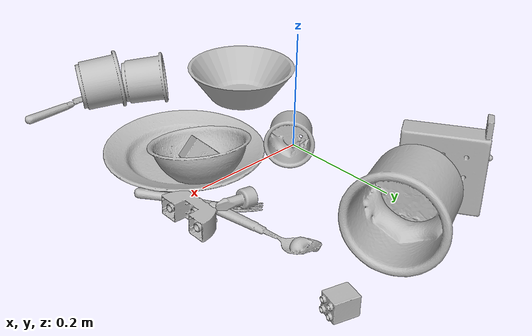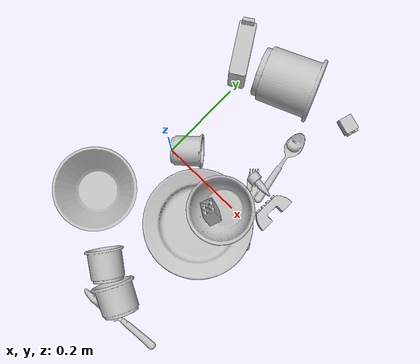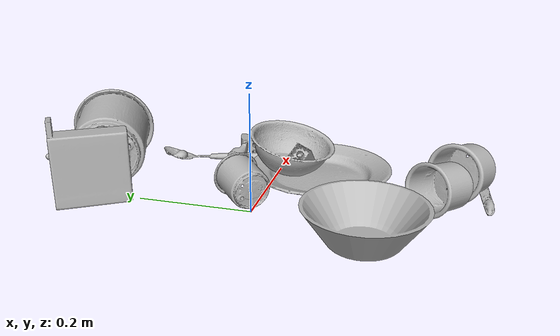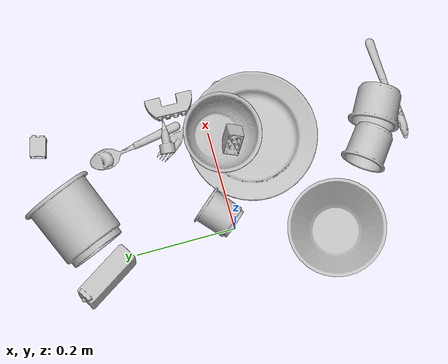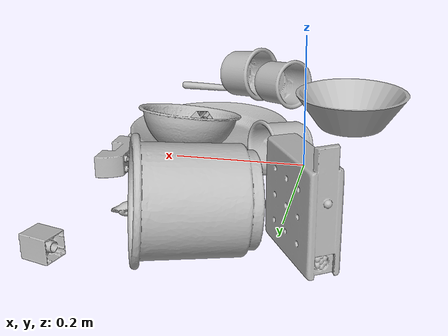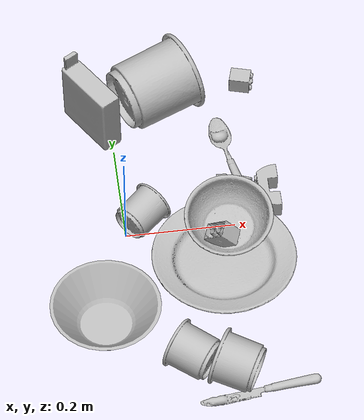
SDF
<sdf version="1.4">
  <world name="default">
    <light name="light1" type="point">
      <pose>0 0 1 0 0 0</pose>
      <diffuse>3 3 3 1</diffuse>
      <specular>3 3 3 1</specular>
    </light>
    <light name="light2" type="point">
      <pose>0 0.5 2 0 0 0</pose>
      <diffuse>1 1 1 1</diffuse>
      <specular>1 1 1 1</specular>
    </light>
    <light name="light3" type="point">
      <pose>0 0.5 2 0 0 0</pose>
      <diffuse>3 3 3 1</diffuse>
      <specular>3 3 3 1</specular>
    </light>
    <scene>
      <ambient>0.7 0.7 0.7</ambient>
    </scene>
    <model name="plate1">
      <link name="link_plate1">
        <collision name="default">
          <geometry>
            <mesh>
              <uri>model://plate/collision_meshes/collision.obj</uri>
              <scale>1.0 1.0 1.0</scale>
            </mesh>
          </geometry>
          <surface>
            <friction>
              <ode>
                <mu>0.5</mu>
                <mu2>0.5</mu2>
              </ode>
            </friction>
          <contact>
        <ode>
            <max_vel>0</max_vel>
            <min_depth>0.0001</min_depth>
            <kp>1e8</kp>
        </ode>
    </contact></surface>
        </collision>
        <visual name="default">
          <geometry>
            <mesh>
              <uri>model://plate/visual_meshes/visual.dae</uri>
              <scale>1.0 1.0 1.0</scale>
            </mesh>
          </geometry>
        </visual>
        <inertial>
          <mass>0.17760059237480164</mass>
          <pose>-0.0006044625188224018 0.0002782586379908025 -0.0010561981471255422 0.0022187804018266454 -0.0032254852757079067 0.45261158451631034</pose>
          <inertia>
            <ixx>0.0008308187</ixx>
            <iyy>0.0008228725</iyy>
            <izz>0.0016249575</izz>
            <ixy>0</ixy>
            <ixz>0</ixz>
            <iyz>0</iyz>
          </inertia>
        </inertial>
      </link>
      <pose>0.1684018075466156 -0.08317098021507263 0.013733083382248878 -3.1025611528104693e-06 -1.037121333175457e-07 1.4698887626245563</pose>
    </model>
    <model name="cup1">
      <link name="link_cup1">
        <collision name="default">
          <geometry>
            <mesh>
              <uri>model://e_cups/collision_meshes/collision.obj</uri>
              <scale>2.0 2.0 2.0</scale>
            </mesh>
          </geometry>
          <surface>
            <friction>
              <ode>
                <mu>0.5</mu>
                <mu2>0.5</mu2>
              </ode>
            </friction>
          <contact>
        <ode>
            <max_vel>0</max_vel>
            <min_depth>0.0001</min_depth>
            <kp>1e8</kp>
        </ode>
    </contact></surface>
        </collision>
        <visual name="default">
          <geometry>
            <mesh>
              <uri>model://e_cups/visual_meshes/visual.dae</uri>
              <scale>2.0 2.0 2.0</scale>
            </mesh>
          </geometry>
        </visual>
        <inertial>
          <mass>0.744063675403595</mass>
          <pose>0.002271148143336177 0.005759569350630045 -0.007765938527882099 0.6952380949131286 0.08767384491187986 -0.5235246841726229</pose>
          <inertia>
            <ixx>0.0026243117</ixx>
            <iyy>0.0027427815</iyy>
            <izz>0.0025091455</izz>
            <ixy>0</ixy>
            <ixz>0</ixz>
            <iyz>0</iyz>
          </inertia>
        </inertial>
      </link>
      <pose>0.08738822489976883 0.29733240604400635 0.0697530210018158 -1.479958689725571 0.4382301521792179 -1.1372974602748247</pose>
    </model>
    <model name="silverware1">
      <link name="link_silverware1">
        <collision name="default">
          <geometry>
            <mesh>
              <uri>model://knife/collision_meshes/collision.obj</uri>
              <scale>1.0 1.0 1.0</scale>
            </mesh>
          </geometry>
          <surface>
            <friction>
              <ode>
                <mu>0.5</mu>
                <mu2>0.5</mu2>
              </ode>
            </friction>
          <contact>
        <ode>
            <max_vel>0</max_vel>
            <min_depth>0.0001</min_depth>
            <kp>1e8</kp>
        </ode>
    </contact></surface>
        </collision>
        <visual name="default">
          <geometry>
            <mesh>
              <uri>model://knife/visual_meshes/visual.dae</uri>
              <scale>1.0 1.0 1.0</scale>
            </mesh>
          </geometry>
        </visual>
        <inertial>
          <mass>0.01882243901491165</mass>
          <pose>-0.02378525212407112 0.001527512213215232 5.062019408796914e-05 0.07305335090357784 0.017248422780830937 -0.007409828138098005</pose>
          <inertia>
            <ixx>5.342572e-07</ixx>
            <iyy>7.231275e-05</iyy>
            <izz>7.248483e-05</izz>
            <ixy>0</ixy>
            <ixz>0</ixz>
            <iyz>0</iyz>
          </inertia>
        </inertial>
      </link>
      <pose>0.19242238998413086 -0.37193334102630615 0.006023768335580826 3.1116169456910114 0.04287177705310596 -3.03653584482552</pose>
    </model>
    <model name="silverware2">
      <link name="link_silverware2">
        <collision name="default">
          <geometry>
            <mesh>
              <uri>model://fork/collision_meshes/collision.obj</uri>
              <scale>1.0 1.0 1.0</scale>
            </mesh>
          </geometry>
          <surface>
            <friction>
              <ode>
                <mu>0.5</mu>
                <mu2>0.5</mu2>
              </ode>
            </friction>
          <contact>
        <ode>
            <max_vel>0</max_vel>
            <min_depth>0.0001</min_depth>
            <kp>1e8</kp>
        </ode>
    </contact></surface>
        </collision>
        <visual name="default">
          <geometry>
            <mesh>
              <uri>model://fork/visual_meshes/visual.dae</uri>
              <scale>1.0 1.0 1.0</scale>
            </mesh>
          </geometry>
        </visual>
        <inertial>
          <mass>0.02216319739818573</mass>
          <pose>-0.029570037499070168 0.0004658822435885668 0.0003218860365450382 -0.01355085274048469 -0.010977831838055618 0.014453900749429992</pose>
          <inertia>
            <ixx>7.769453e-07</ixx>
            <iyy>5.7861733e-05</iyy>
            <izz>5.8209254e-05</izz>
            <ixy>0</ixy>
            <ixz>0</ixz>
            <iyz>0</iyz>
          </inertia>
        </inertial>
      </link>
      <pose>0.23312553763389587 0.028105761855840683 0.005225695203989744 -0.01721511264258331 0.05008522788497596 2.225659054523816</pose>
    </model>
    <model name="silverware3">
      <link name="link_silverware3">
        <collision name="default">
          <geometry>
            <mesh>
              <uri>model://spoon/collision_meshes/collision.obj</uri>
              <scale>1.0 1.0 1.0</scale>
            </mesh>
          </geometry>
          <surface>
            <friction>
              <ode>
                <mu>0.5</mu>
                <mu2>0.5</mu2>
              </ode>
            </friction>
          <contact>
        <ode>
            <max_vel>0</max_vel>
            <min_depth>0.0001</min_depth>
            <kp>1e8</kp>
        </ode>
    </contact></surface>
        </collision>
        <visual name="default">
          <geometry>
            <mesh>
              <uri>model://spoon/visual_meshes/visual.dae</uri>
              <scale>1.0 1.0 1.0</scale>
            </mesh>
          </geometry>
        </visual>
        <inertial>
          <mass>0.0369713120162487</mass>
          <pose>-0.005526314955204725 -0.001603417214937508 -0.0007271651993505657 0.03521850370393077 -0.03906584809093457 0.006150612862082015</pose>
          <inertia>
            <ixx>2.0564048e-06</ixx>
            <iyy>0.00014067463</iyy>
            <izz>0.00014168874</izz>
            <ixy>0</ixy>
            <ixz>0</ixz>
            <iyz>0</iyz>
          </inertia>
        </inertial>
      </link>
      <pose>0.21153050661087036 0.14753752946853638 0.008385272696614265 0.006745840875465331 0.02689311846711688 1.745917068575438</pose>
    </model>
    <model name="cup3">
      <link name="link_cup3">
        <collision name="default">
          <geometry>
            <mesh>
              <uri>model://h_cups/collision_meshes/collision.obj</uri>
              <scale>1.0 1.0 1.0</scale>
            </mesh>
          </geometry>
          <surface>
            <friction>
              <ode>
                <mu>0.5</mu>
                <mu2>0.5</mu2>
              </ode>
            </friction>
          <contact>
        <ode>
            <max_vel>0</max_vel>
            <min_depth>0.0001</min_depth>
            <kp>1e8</kp>
        </ode>
    </contact></surface>
        </collision>
        <visual name="default">
          <geometry>
            <mesh>
              <uri>model://h_cups/visual_meshes/visual.dae</uri>
              <scale>1.0 1.0 1.0</scale>
            </mesh>
          </geometry>
        </visual>
        <inertial>
          <mass>0.07650958746671677</mass>
          <pose>-2.7029362172470428e-05 0.0002301867789356038 -0.0018405390437692404 -0.02436239906192228 0.06545228304852578 0.1288505673262376</pose>
          <inertia>
            <ixx>9.880857e-05</ixx>
            <iyy>9.7629454e-05</iyy>
            <izz>0.0001036231</izz>
            <ixy>0</ixy>
            <ixz>0</ixz>
            <iyz>0</iyz>
          </inertia>
        </inertial>
      </link>
      <pose>0.08439096808433533 -0.2991544008255005 0.04218224063515663 1.0193209505323064 -1.3688428641423411 -1.6778101380759927</pose>
    </model>
    <model name="cup4">
      <link name="link_cup4">
        <collision name="default">
          <geometry>
            <mesh>
              <uri>model://f_cups/collision_meshes/collision.obj</uri>
              <scale>1.0 1.0 1.0</scale>
            </mesh>
          </geometry>
          <surface>
            <friction>
              <ode>
                <mu>0.5</mu>
                <mu2>0.5</mu2>
              </ode>
            </friction>
          <contact>
        <ode>
            <max_vel>0</max_vel>
            <min_depth>0.0001</min_depth>
            <kp>1e8</kp>
        </ode>
    </contact></surface>
        </collision>
        <visual name="default">
          <geometry>
            <mesh>
              <uri>model://f_cups/visual_meshes/visual.dae</uri>
              <scale>1.0 1.0 1.0</scale>
            </mesh>
          </geometry>
        </visual>
        <inertial>
          <mass>0.06643713265657425</mass>
          <pose>-0.003171468386426568 -0.0006240070797502995 -0.003655537962913513 0.7862285241405351 -0.26079358215919657 -0.18237309734404591</pose>
          <inertia>
            <ixx>6.2452695e-05</ixx>
            <iyy>6.551358e-05</iyy>
            <izz>6.820148e-05</izz>
            <ixy>0</ixy>
            <ixz>0</ixz>
            <iyz>0</iyz>
          </inertia>
        </inertial>
      </link>
      <pose>0.031243901699781418 0.021690398454666138 0.03734475374221802 1.4059915072289673 -0.9313867194936116 2.4221317238168365</pose>
    </model>
    <model name="cup5">
      <link name="link_cup5">
        <collision name="default">
          <geometry>
            <mesh>
              <uri>model://j_cups/collision_meshes/collision.obj</uri>
              <scale>1.0 1.0 1.0</scale>
            </mesh>
          </geometry>
          <surface>
            <friction>
              <ode>
                <mu>0.5</mu>
                <mu2>0.5</mu2>
              </ode>
            </friction>
          <contact>
        <ode>
            <max_vel>0</max_vel>
            <min_depth>0.0001</min_depth>
            <kp>1e8</kp>
        </ode>
    </contact></surface>
        </collision>
        <visual name="default">
          <geometry>
            <mesh>
              <uri>model://j_cups/visual_meshes/visual.dae</uri>
              <scale>1.0 1.0 1.0</scale>
            </mesh>
          </geometry>
        </visual>
        <inertial>
          <mass>0.12178023159503937</mass>
          <pose>0.0006164865335449576 0.000539897009730339 -0.001347901183180511 0.03030406613159603 0.03757978252187804 0.4386981755119238</pose>
          <inertia>
            <ixx>0.0001788119</ixx>
            <iyy>0.00018067128</iyy>
            <izz>0.00020613305</izz>
            <ixy>0</ixy>
            <ixz>0</ixz>
            <iyz>0</iyz>
          </inertia>
        </inertial>
      </link>
      <pose>0.15649187564849854 -0.3353590965270996 0.04713508486747742 1.1446320313070861 1.2796737707410124 -2.4725616941728283</pose>
    </model>
    <model name="bowl1">
      <link name="link_bowl1">
        <collision name="default">
          <geometry>
            <mesh>
              <uri>model://bowl/collision_meshes/collision.obj</uri>
              <scale>1.0 1.0 1.0</scale>
            </mesh>
          </geometry>
          <surface>
            <friction>
              <ode>
                <mu>0.5</mu>
                <mu2>0.5</mu2>
              </ode>
            </friction>
          <contact>
        <ode>
            <max_vel>0</max_vel>
            <min_depth>0.0001</min_depth>
            <kp>1e8</kp>
        </ode>
    </contact></surface>
        </collision>
        <visual name="default">
          <geometry>
            <mesh>
              <uri>model://bowl/visual_meshes/visual.dae</uri>
              <scale>1.0 1.0 1.0</scale>
            </mesh>
          </geometry>
        </visual>
        <inertial>
          <mass>0.07745425403118134</mass>
          <pose>0.0002044533030129969 -0.001030205748975277 -0.0008042643312364817 -0.015764104528614948 0.014546761750555465 0.7140386532433999</pose>
          <inertia>
            <ixx>0.00017791858</ixx>
            <iyy>0.0001739432</iyy>
            <izz>0.00029932024</izz>
            <ixy>0</ixy>
            <ixz>0</ixz>
            <iyz>0</iyz>
          </inertia>
        </inertial>
      </link>
      <pose>0.18597181141376495 -0.02063189633190632 0.04112526401877403 -0.046269170307244555 -0.2257405767256315 1.5023780109155915</pose>
    </model>
    <model name="bowl2">
      <link name="link_bowl2">
        <collision name="default">
          <geometry>
            <mesh>
              <uri>model://bowl_a/collision_meshes/collision.obj</uri>
              <scale>1.0 1.0 1.0</scale>
            </mesh>
          </geometry>
          <surface>
            <friction>
              <ode>
                <mu>0.5</mu>
                <mu2>0.5</mu2>
              </ode>
            </friction>
          <contact>
        <ode>
            <max_vel>0</max_vel>
            <min_depth>0.0001</min_depth>
            <kp>1e8</kp>
        </ode>
    </contact></surface>
        </collision>
        <visual name="default">
          <geometry>
            <mesh>
              <uri>model://bowl_a/visual_meshes/visual.dae</uri>
              <scale>1.0 1.0 1.0</scale>
            </mesh>
          </geometry>
        </visual>
        <inertial>
          <mass>0.3088552951812744</mass>
          <pose>0.00027867488097399473 4.730938235297799e-05 -0.0013765291078016162 -0.0009805400563029818 -0.0010938222386440513 -0.19123616665791646</pose>
          <inertia>
            <ixx>0.0008793254</ixx>
            <iyy>0.00088472397</iyy>
            <izz>0.0015639137</izz>
            <ixy>0</ixy>
            <ixz>0</ixz>
            <iyz>0</iyz>
          </inertia>
        </inertial>
      </link>
      <pose>-0.05702519789338112 -0.19271500408649445 0.030382705852389336 -7.748677047284916e-06 1.4739519802017903e-05 0.7452117819842434</pose>
    </model>
    <model name="toy1">
      <link name="link_toy1">
        <collision name="default">
          <geometry>
            <mesh>
              <uri>model://nine_hole_peg_test/collision_meshes/collision.obj</uri>
              <scale>1.0 1.0 1.0</scale>
            </mesh>
          </geometry>
          <surface>
            <friction>
              <ode>
                <mu>0.5</mu>
                <mu2>0.5</mu2>
              </ode>
            </friction>
          <contact>
        <ode>
            <max_vel>0</max_vel>
            <min_depth>0.0001</min_depth>
            <kp>1e8</kp>
        </ode>
    </contact></surface>
        </collision>
        <visual name="default">
          <geometry>
            <mesh>
              <uri>model://nine_hole_peg_test/visual_meshes/visual.dae</uri>
              <scale>1.0 1.0 1.0</scale>
            </mesh>
          </geometry>
        </visual>
        <inertial>
          <mass>0.6997236609458923</mass>
          <pose>-0.004617386497557163 -0.009647613391280174 2.6460686058271676e-05 -0.0014666798725883532 0.0007194177661592421 -0.634241755630697</pose>
          <inertia>
            <ixx>0.001094133</ixx>
            <iyy>0.0010215805</iyy>
            <izz>0.0019172435</izz>
            <ixy>0</ixy>
            <ixz>0</ixz>
            <iyz>0</iyz>
          </inertia>
        </inertial>
      </link>
      <pose>-0.03551517426967621 0.27253323793411255 0.07401732355356216 1.5585102858418258 -0.007628552422413548 2.132946844200842</pose>
    </model>
    <model name="toy2">
      <link name="link_toy2">
        <collision name="default">
          <geometry>
            <mesh>
              <uri>model://b_lego_duplo/collision_meshes/collision.obj</uri>
              <scale>1.0 1.0 1.0</scale>
            </mesh>
          </geometry>
          <surface>
            <friction>
              <ode>
                <mu>0.5</mu>
                <mu2>0.5</mu2>
              </ode>
            </friction>
          <contact>
        <ode>
            <max_vel>0</max_vel>
            <min_depth>0.0001</min_depth>
            <kp>1e8</kp>
        </ode>
    </contact></surface>
        </collision>
        <visual name="default">
          <geometry>
            <mesh>
              <uri>model://b_lego_duplo/visual_meshes/visual.dae</uri>
              <scale>1.0 1.0 1.0</scale>
            </mesh>
          </geometry>
        </visual>
        <inertial>
          <mass>0.036269694566726685</mass>
          <pose>-0.00011053054186049849 -9.152130587608553e-06 0.0019294297089800239 -0.03749458994465856 -0.026354447033388347 0.4518895757464325</pose>
          <inertia>
            <ixx>7.4228647e-06</ixx>
            <iyy>7.4727645e-06</iyy>
            <izz>6.6135317e-06</izz>
            <ixy>0</ixy>
            <ixz>0</ixz>
            <iyz>0</iyz>
          </inertia>
        </inertial>
      </link>
      <pose>0.2605798840522766 0.334288090467453 0.016152314841747284 -3.1210363145621707 1.5624527589299686 2.8794199412808754</pose>
    </model>
    <model name="toy3">
      <link name="link_toy3">
        <collision name="default">
          <geometry>
            <mesh>
              <uri>model://e_lego_duplo/collision_meshes/collision.obj</uri>
              <scale>1.0 1.0 1.0</scale>
            </mesh>
          </geometry>
          <surface>
            <friction>
              <ode>
                <mu>0.5</mu>
                <mu2>0.5</mu2>
              </ode>
            </friction>
          <contact>
        <ode>
            <max_vel>0</max_vel>
            <min_depth>0.0001</min_depth>
            <kp>1e8</kp>
        </ode>
    </contact></surface>
        </collision>
        <visual name="default">
          <geometry>
            <mesh>
              <uri>model://e_lego_duplo/visual_meshes/visual.dae</uri>
              <scale>1.0 1.0 1.0</scale>
            </mesh>
          </geometry>
        </visual>
        <inertial>
          <mass>0.09994293004274368</mass>
          <pose>0.0003256055060774088 0.00023485402925871313 0.0019521453650668263 -0.0225675226805428 -6.825163911406593e-05 -0.00762515763197677</pose>
          <inertia>
            <ixx>2.08414e-05</ixx>
            <iyy>8.553845e-05</iyy>
            <izz>8.329725e-05</izz>
            <ixy>0</ixy>
            <ixz>0</ixz>
            <iyz>0</iyz>
          </inertia>
        </inertial>
      </link>
      <pose>0.2688350975513458 0.06006436422467232 0.016279311850667 1.578651894360079 -0.004766727521591999 -1.596938179152591</pose>
    </model>
    <model name="toy4">
      <link name="link_toy4">
        <collision name="default">
          <geometry>
            <mesh>
              <uri>model://d_lego_duplo/collision_meshes/collision.obj</uri>
              <scale>1.0 1.0 1.0</scale>
            </mesh>
          </geometry>
          <surface>
            <friction>
              <ode>
                <mu>0.5</mu>
                <mu2>0.5</mu2>
              </ode>
            </friction>
          <contact>
        <ode>
            <max_vel>0</max_vel>
            <min_depth>0.0001</min_depth>
            <kp>1e8</kp>
        </ode>
    </contact></surface>
        </collision>
        <visual name="default">
          <geometry>
            <mesh>
              <uri>model://d_lego_duplo/visual_meshes/visual.dae</uri>
              <scale>1.0 1.0 1.0</scale>
            </mesh>
          </geometry>
        </visual>
        <inertial>
          <mass>0.04219998046755791</mass>
          <pose>0.0028305635787546635 0.00016366135969292372 0.0008589813369326293 0.08010947906167593 -0.38355230128712514 0.001029700717632254</pose>
          <inertia>
            <ixx>8.169298e-06</ixx>
            <iyy>1.1594444e-05</iyy>
            <izz>1.1181217e-05</izz>
            <ixy>0</ixy>
            <ixz>0</ixz>
            <iyz>0</iyz>
          </inertia>
        </inertial>
      </link>
      <pose>0.1718878298997879 -0.042136043310165405 0.02885223925113678 -2.7887329297082495 -0.6906069214534613 -0.6055093571842513</pose>
    </model>
    <model name="toy5">
      <link name="link_toy5">
        <collision name="default">
          <geometry>
            <mesh>
              <uri>model://e_toy_airplane/collision_meshes/collision.obj</uri>
              <scale>1.0 1.0 1.0</scale>
            </mesh>
          </geometry>
          <surface>
            <friction>
              <ode>
                <mu>0.5</mu>
                <mu2>0.5</mu2>
              </ode>
            </friction>
          <contact>
        <ode>
            <max_vel>0</max_vel>
            <min_depth>0.0001</min_depth>
            <kp>1e8</kp>
        </ode>
    </contact></surface>
        </collision>
        <visual name="default">
          <geometry>
            <mesh>
              <uri>model://e_toy_airplane/visual_meshes/visual.dae</uri>
              <scale>1.0 1.0 1.0</scale>
            </mesh>
          </geometry>
        </visual>
        <inertial>
          <mass>0.01083444245159626</mass>
          <pose>0.00011740464105969295 -2.2482989152194932e-05 -0.011187201365828514 0.005518500665833105 0.009228299677984822 0.1504140594290799</pose>
          <inertia>
            <ixx>3.3067965e-06</ixx>
            <iyy>3.2729695e-06</iyy>
            <izz>9.938221e-07</izz>
            <ixy>0</ixy>
            <ixz>0</ixz>
            <iyz>0</iyz>
          </inertia>
        </inertial>
      </link>
      <pose>0.21144038438796997 0.08444426953792572 0.02260785549879074 1.4682156205818597 0.15724542971281913 1.4464537447283816</pose>
    </model>
  <physics type="ode">
      <max_contacts>50</max_contacts>
      <ode>
        <solver>
          <type>quick</type>
          <iters>75</iters>
        </solver>
        <constraints>
          <contact_max_correcting_vel>0</contact_max_correcting_vel>
          <contact_surface_layer>0</contact_surface_layer>
        </constraints>
      </ode>
    </physics></world>
</sdf>
